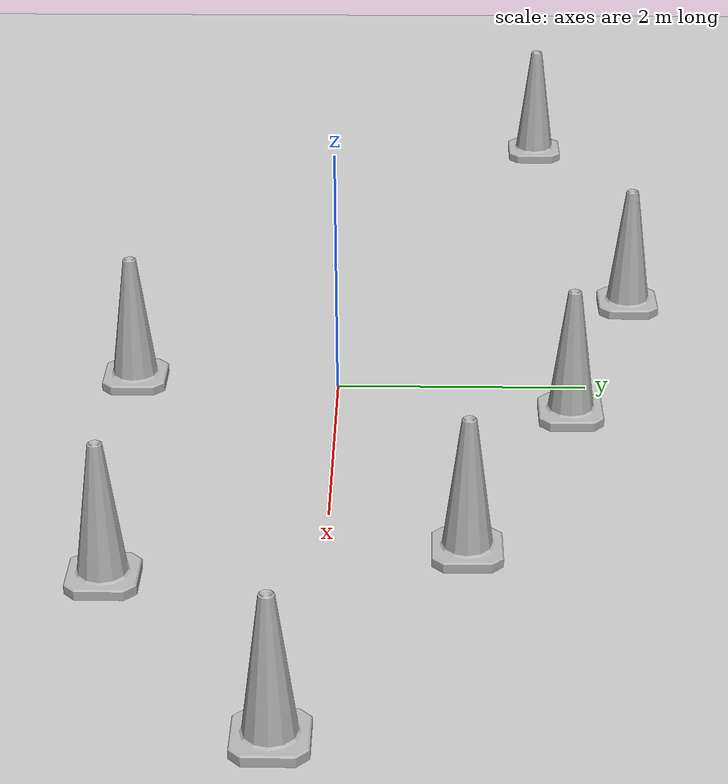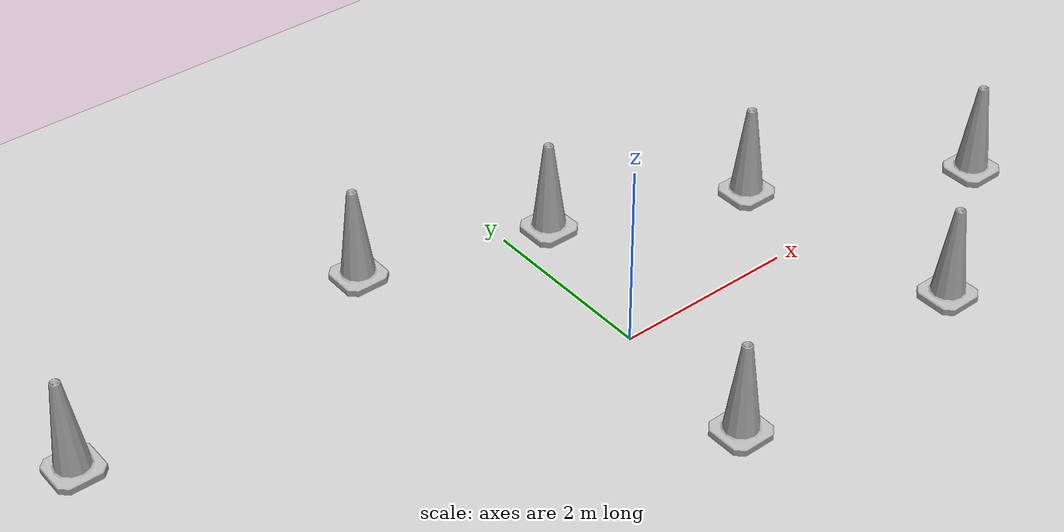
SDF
<sdf version="1.7">
 <world name="default">
  <light name="sun" type="directional">
   <pose>0 0 10 0 -0 0</pose>
   <diffuse>0.8 0.8 0.8 1</diffuse>
   <specular>0.2 0.2 0.2 1</specular>
   <attenuation>
    <range>1000</range>
    <constant>0.9</constant>
    <linear>0.01</linear>
    <quadratic>0.001</quadratic>
   </attenuation>
   <direction>-0.5 0.1 -0.9</direction>
   <spot><inner_angle>0</inner_angle><outer_angle>0</outer_angle><falloff>0</falloff></spot>
  </light>
  <model name="ground_plane">
   <static>1</static>
   <link name="link">
    <collision name="collision">
     <geometry><plane><normal>0 0 1</normal><size>100 100</size></plane></geometry>
     <surface><friction><ode><mu>100</mu><mu2>50</mu2></ode></friction></surface>
    </collision>
    <visual name="visual">
     <cast_shadows>0</cast_shadows>
     <geometry><plane><normal>0 0 1</normal><size>100 100</size></plane></geometry>
     <material>
      <script><uri>file://media/materials/scripts/gazebo.material</uri><name>Gazebo/Grey</name></script>
     </material>
    </visual>
   </link>
  </model>
  <gravity>0 0 -9.8</gravity>
  <magnetic_field>6e-06 2.3e-05 -4.2e-05</magnetic_field>
  <atmosphere type="adiabatic"/>
  <physics type="ode">
   <max_step_size>0.001</max_step_size>
   <real_time_factor>1</real_time_factor>
   <real_time_update_rate>1000</real_time_update_rate>
  </physics>
  <scene><ambient>0.4 0.4 0.4 1</ambient><background>0.7 0.7 0.7 1</background><shadows>1</shadows></scene>
  <audio><device>default</device></audio>
  <spherical_coordinates>
   <surface_model>EARTH_WGS84</surface_model>
   <latitude_deg>0</latitude_deg>
   <longitude_deg>0</longitude_deg>
   <elevation>0</elevation>
   <heading_deg>0</heading_deg>
  </spherical_coordinates>
  <model name="Construction Cone">
   <link name="link">
    <collision name="collision">
     <geometry>
      <mesh><scale>10 10 10</scale><uri>model://construction_cone/meshes/construction_cone.dae</uri></mesh>
     </geometry>
    </collision>
    <visual name="visual">
     <geometry>
      <mesh><scale>10 10 10</scale><uri>model://construction_cone/meshes/construction_cone.dae</uri></mesh>
     </geometry>
    </visual>
    <inertial>
     <inertia><ixx>1</ixx><ixy>0</ixy><ixz>0</ixz><iyy>1</iyy><iyz>0</iyz><izz>1</izz></inertia>
     <mass>1</mass>
    </inertial>
   </link>
   <pose>-1.50849 2.46305 -1e-05 0 -0 0</pose>
  </model>
  <model name="Construction Cone_0">
   <link name="link">
    <collision name="collision">
     <geometry>
      <mesh><scale>10 10 10</scale><uri>model://construction_cone/meshes/construction_cone.dae</uri></mesh>
     </geometry>
    </collision>
    <visual name="visual">
     <geometry>
      <mesh><scale>10 10 10</scale><uri>model://construction_cone/meshes/construction_cone.dae</uri></mesh>
     </geometry>
    </visual>
    <inertial>
     <inertia><ixx>1</ixx><ixy>0</ixy><ixz>0</ixz><iyy>1</iyy><iyz>0</iyz><izz>1</izz></inertia>
     <mass>1</mass>
    </inertial>
   </link>
   <pose>-0.074558 -1.64344 -1e-06 2e-06 2e-06 0</pose>
  </model>
  <model name="Construction Cone_1">
   <link name="link">
    <collision name="collision">
     <geometry>
      <mesh><scale>10 10 10</scale><uri>model://construction_cone/meshes/construction_cone.dae</uri></mesh>
     </geometry>
    </collision>
    <visual name="visual">
     <geometry>
      <mesh><scale>10 10 10</scale><uri>model://construction_cone/meshes/construction_cone.dae</uri></mesh>
     </geometry>
    </visual>
    <inertial>
     <inertia><ixx>1</ixx><ixy>0</ixy><ixz>0</ixz><iyy>1</iyy><iyz>0</iyz><izz>1</izz></inertia>
     <mass>1</mass>
    </inertial>
   </link>
   <pose>2.50982 0.998106 -0 0 -1e-06 0</pose>
  </model>
  <model name="Construction Cone_2">
   <link name="link">
    <collision name="collision">
     <geometry>
      <mesh><scale>10 10 10</scale><uri>model://construction_cone/meshes/construction_cone.dae</uri></mesh>
     </geometry>
    </collision>
    <visual name="visual">
     <geometry>
      <mesh><scale>10 10 10</scale><uri>model://construction_cone/meshes/construction_cone.dae</uri></mesh>
     </geometry>
    </visual>
    <inertial>
     <inertia><ixx>1</ixx><ixy>0</ixy><ixz>0</ixz><iyy>1</iyy><iyz>0</iyz><izz>1</izz></inertia>
     <mass>1</mass>
    </inertial>
   </link>
   <pose>2.88294 -1.52241 0 -0 -0 -0</pose>
  </model>
  <model name="Construction Cone_3">
   <link name="link">
    <collision name="collision">
     <geometry>
      <mesh><scale>10 10 10</scale><uri>model://construction_cone/meshes/construction_cone.dae</uri></mesh>
     </geometry>
    </collision>
    <visual name="visual">
     <geometry>
      <mesh><scale>10 10 10</scale><uri>model://construction_cone/meshes/construction_cone.dae</uri></mesh>
     </geometry>
    </visual>
    <inertial>
     <inertia><ixx>1</ixx><ixy>0</ixy><ixz>0</ixz><iyy>1</iyy><iyz>0</iyz><izz>1</izz></inertia>
     <mass>1</mass>
    </inertial>
   </link>
   <pose>0.477587 1.84942 -1e-05 0 -0 0</pose>
  </model>
  <model name="Construction Cone_4">
   <link name="link">
    <collision name="collision">
     <geometry>
      <mesh><scale>10 10 10</scale><uri>model://construction_cone/meshes/construction_cone.dae</uri></mesh>
     </geometry>
    </collision>
    <visual name="visual">
     <geometry>
      <mesh><scale>10 10 10</scale><uri>model://construction_cone/meshes/construction_cone.dae</uri></mesh>
     </geometry>
    </visual>
    <inertial>
     <inertia><ixx>1</ixx><ixy>0</ixy><ixz>0</ixz><iyy>1</iyy><iyz>0</iyz><izz>1</izz></inertia>
     <mass>1</mass>
    </inertial>
   </link>
   <pose>4.6829 -0.255585 -1e-05 -1e-06 0 0</pose>
  </model>
  <model name="Construction Cone_5">
   <link name="link">
    <collision name="collision">
     <geometry>
      <mesh><scale>10 10 10</scale><uri>model://construction_cone/meshes/construction_cone.dae</uri></mesh>
     </geometry>
    </collision>
    <visual name="visual">
     <geometry>
      <mesh><scale>10 10 10</scale><uri>model://construction_cone/meshes/construction_cone.dae</uri></mesh>
     </geometry>
    </visual>
    <inertial>
     <inertia><ixx>1</ixx><ixy>0</ixy><ixz>0</ixz><iyy>1</iyy><iyz>0</iyz><izz>1</izz></inertia>
     <mass>1</mass>
    </inertial>
   </link>
   <pose>-5.0597 1.81845 -0 0 -0 0</pose>
  </model>
 </world>
</sdf>
